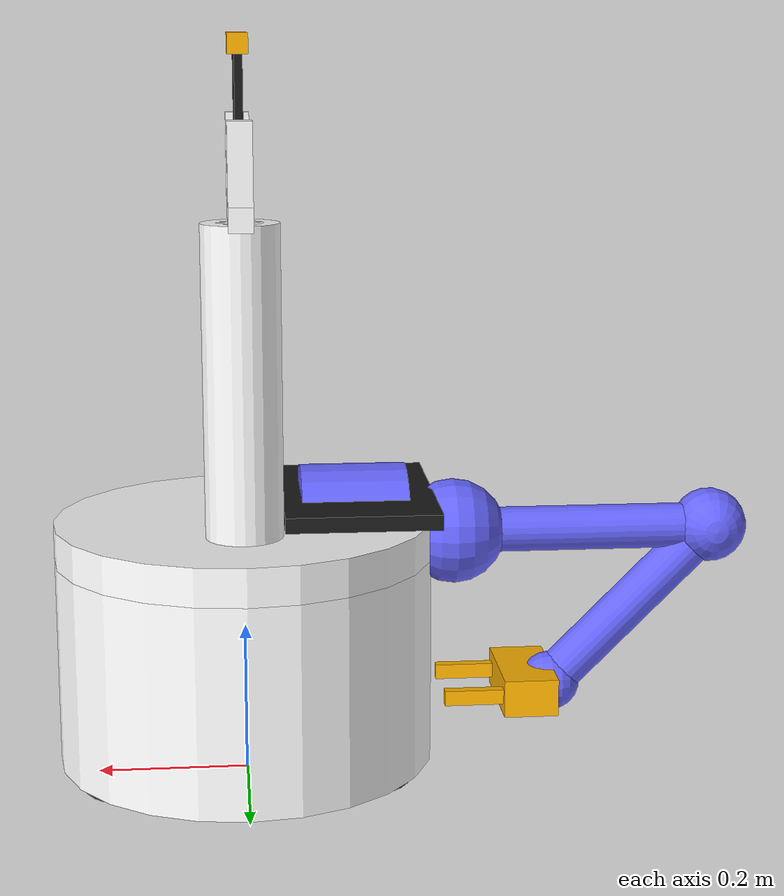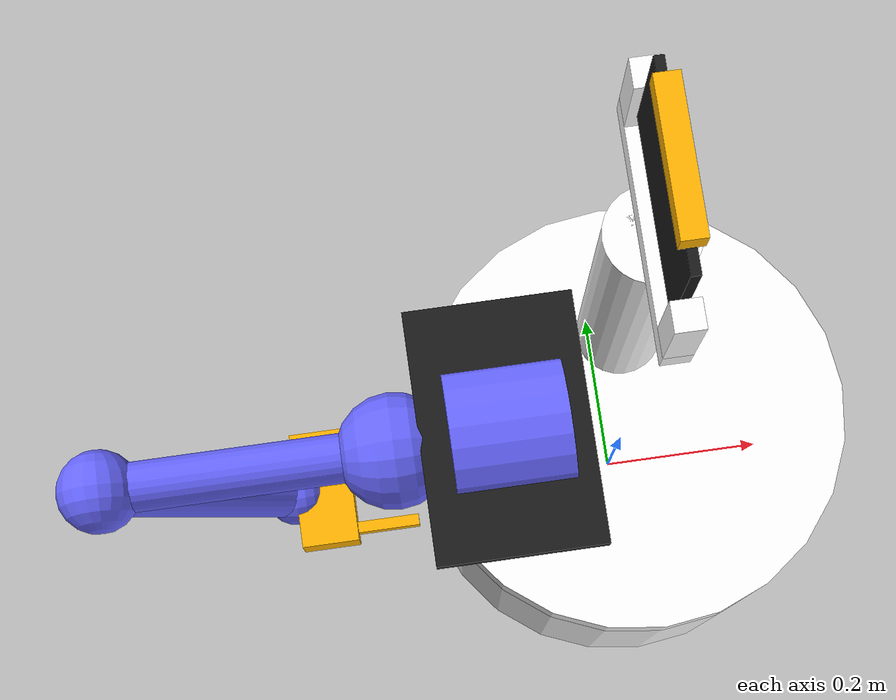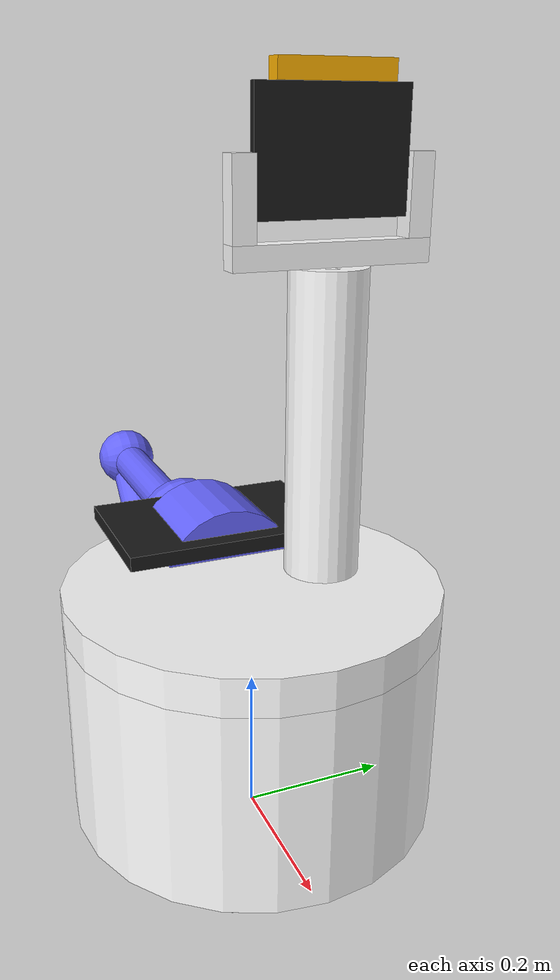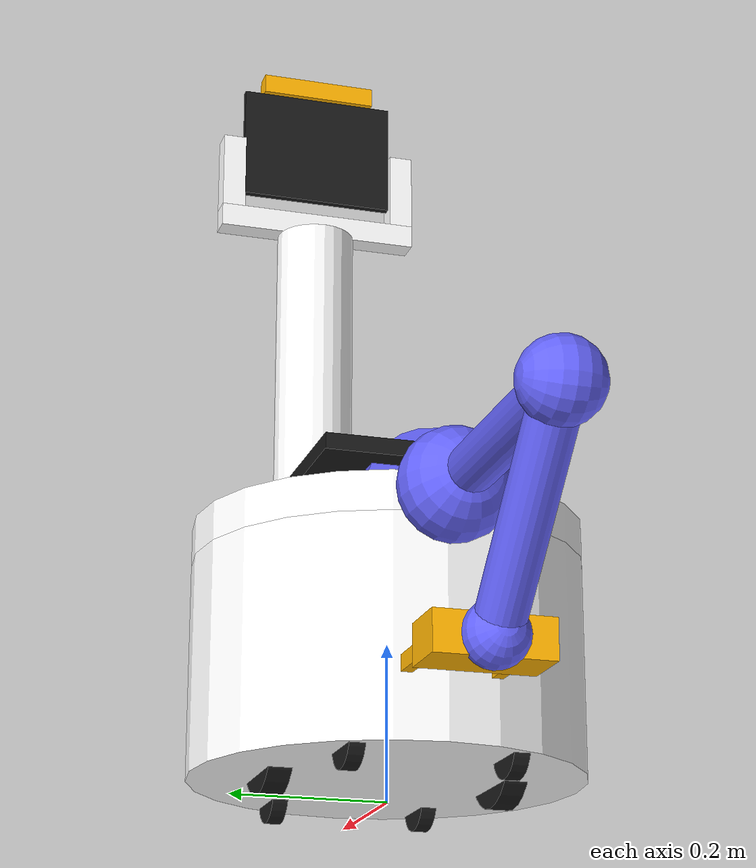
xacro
<?xml version="1.0" ?>
<robot xmlns:xacro="http://www.ros.org/wiki/xacro" name="korus">
  <include filename="$(find korus_meta)/resources/urdf/korus_robosem_base_front_mount.xacro"/>
  <include filename="$(find korus_meta)/resources/urdf/schunk_pwa_arm.xacro"/>

  <!-- ************************ Robot model ************************* -->
  <xacro:korus_robosem_base_front_mount>
  </xacro:korus_robosem_base_front_mount>

  <!-- ************************ Arm model ************************* -->
	<xacro:schunk_pwa_arm parent="body_link">
	</xacro:schunk_pwa_arm>
</robot>

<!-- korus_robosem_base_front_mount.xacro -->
<robot xmlns:xacro="http://www.ros.org/wiki/xacro">

	  <!-- ************************ Properties ************************** -->
	  <xacro:property name="pi" value="3.1415926535897931" />
	  <xacro:property name="material_white">
	    <material name="white">
	      <color rgba="1 1 1 1"/>
	    </material>
	  </xacro:property>
	  <xacro:property name="material_orange">
	    <material name="orange">
	      <color rgba="1.0 0.7 0.0 1"/>
	    </material>
	  </xacro:property>
	  <xacro:property name="material_red">
	    <material name="red">
	      <color rgba="1.0 0.0 0.0 1"/>
	    </material>
	  </xacro:property>
	  <xacro:property name="material_grey_blue">
	    <material name="grey_blue">
	      <color rgba="0.4 0.4 1.0 1"/>
	    </material>
	  </xacro:property>
	  <xacro:property name="material_blue">
	    <material name="blue">
	      <color rgba="0.0 0.0 1.0 1"/>
	    </material>
	  </xacro:property>
	  <xacro:property name="material_green">
	    <material name="green">
	      <color rgba="0 .8 0 1"/>
	    </material>
	  </xacro:property>
	  <xacro:property name="material_grey">
	    <material name="grey">
	      <color rgba="0.7 0.7 0.7 1.0"/>
	    </material>
	  </xacro:property>
	  <xacro:property name="material_black">
	    <material name="black">
	      <color rgba="0.1 0.1 0.1 1"/>
	    </material>
	  </xacro:property>
    <xacro:property name="wheel_bias" value="0.3" />
    <xacro:property name="wheel_radius" value="0.075" />
    <xacro:property name="caster_wheel_bias" value="0.2" />
    <xacro:property name="caster_wheel_radius" value="0.040" />

    <!-- ************************** Wheel macro ************************** -->
	  <xacro:macro name="wheel" params="name length radius off_x off_y off_z type">
	    <link name="${name}">
	      <visual>
	        <geometry>
	          <cylinder length="${length}" radius="${radius}"/>
	        </geometry>
	        <origin rpy="0 ${pi/2} 0" xyz="0 0 0"/>
	        <material name="black">
	          <color rgba="0.1 0.1 0.1 1"/>
	        </material>
	      </visual>
	    </link>
	    <joint name="${name}" type="${type}">
	      <parent link="base_link"/>
	      <child link="${name}"/>
	      <origin rpy="0 0 ${pi/2}" xyz="${off_x} ${off_y} ${off_z}"/>
	    </joint>
	  </xacro:macro>

    <!-- ************************** Robot macro ************************** -->
    <xacro:macro name="korus_robosem_base_front_mount">

		  <!-- ************************** Base *************************** -->
		  <link name="base_footprint"></link>
		  <joint name="base_joint" type="fixed">
		    <parent link="base_footprint"/>
		    <child link="base_link"/>
		    <origin rpy="0 0 0" xyz="0.0 0.0 0.075"/>
		  </joint>
		  <link name="base_link">
		    <visual>
		      <origin rpy="0 0 0" xyz="0.0 0 0.0875"/>
		       <geometry>
		        <cylinder length="0.275" radius="0.250"/>
		      </geometry>
		      <xacro:insert_block name="material_white" />
		    </visual>
		  </link>
		  <xacro:wheel name="wheel_left" length="0.03" radius="${wheel_radius}" off_x="0.0" off_y="${wheel_bias/2}" off_z="0.0" type="continuous"/>
		  <xacro:wheel name="wheel_right" length="0.03" radius="${wheel_radius}" off_x="0.0" off_y="-${wheel_bias/2}" off_z="0.0" type="continuous"/>
		  <xacro:wheel name="caster_front_left" length="0.02" radius="${caster_wheel_radius}" off_x="0.18" off_y="${caster_wheel_bias/2}" off_z="-0.035" type="fixed"/>
		  <xacro:wheel name="caster_front_right" length="0.02" radius="${caster_wheel_radius}" off_x="0.18" off_y="-${caster_wheel_bias/2}" off_z="-0.035" type="fixed"/>
		  <xacro:wheel name="caster_back_left" length="0.02" radius="${caster_wheel_radius}" off_x="-0.18" off_y="${caster_wheel_bias/2}" off_z="-0.035" type="fixed"/>
		  <xacro:wheel name="caster_back_right" length="0.02" radius="${caster_wheel_radius}" off_x="-0.18" off_y="-${caster_wheel_bias/2}" off_z="-0.035" type="fixed"/>

		  <!-- ************************** Body ************************** -->

		  <joint name="body" type="revolute">
		    <parent link="base_link"/>
		    <child link="body_link"/>
		    <origin rpy="0 0 0" xyz="0.0 0.0 0.250"/>
		    <axis xyz="0 0 1"/>
		    <limit effort="10" lower="-${pi}" upper="${pi}" velocity="0.013"/>
		  </joint>
		  <link name="body_link">
		    <visual>
		      <origin rpy="0 0 0" xyz="0.0 0.0 0.0"/>
		       <geometry>
		        <cylinder length="0.05" radius="0.25"/>
		      </geometry>
		      <xacro:insert_block name="material_white" />
		    </visual>
		  </link>

      <!-- ************************** Tray ************************** -->
      <joint name="tray_joint" type="fixed">
        <parent link="body_link"/>
        <child link="tray_link"/>
        <origin rpy="0 0 0" xyz="0.0 0.0 0.0"/>
      </joint>
      <link name="tray_link">
      <visual>
        <geometry>
          <box size="0.20 0.30 0.02" />
        </geometry>
        <origin rpy="0 0.0 0" xyz="-0.15 0.0 0.05"/>
        <xacro:insert_block name="material_black" />
      </visual>
      </link>

		  <!-- ************************** Torso *************************** -->
		  <joint name="torso_joint" type="fixed">
		    <parent link="body_link"/>
		    <child link="torso_link"/>
		    <origin xyz="0.0 0.10 0.025" rpy="0 0 0"/>
		  </joint>
		  <link name="torso_link">
		    <visual>
		      <geometry>
		        <cylinder length="0.40" radius="0.05"/>
		      </geometry>
		      <origin rpy="0 0 0" xyz="0 0 0.20"/>
		      <xacro:insert_block name="material_white" />
		    </visual>
		  </link>

<!-- 	  ************************** Head ************************** -->
	  <joint name="head_joint" type="prismatic">
	    <parent link="torso_link"/>
	    <child link="head_link"/>
	    <origin rpy="0 0 ${pi}" xyz="0.0 0 0.0"/>
      <axis xyz="0 0 1"/>
      <limit effort="10" lower="0.0" upper="0.4" velocity="0.013"/>
	  </joint>
	  <link name="head_link">
	    <visual>
	      <geometry>
	        <cylinder length="0.40" radius="0.03"/>
	      </geometry>
	      <origin rpy="0 0 0" xyz="0.0 0.0 0.2"/>
	      <xacro:insert_block name="material_white" />
	    </visual>
	  </link>

<!-- 	  ************************ Tablet ************************* -->
	  <joint name="tablet_pan_joint" type="revolute">
	    <parent link="head_link"/>
	    <child link="tablet_pan_link"/>
	    <origin rpy="0 0 0" xyz="0.0 0.0 0.40"/>
	    <axis xyz="0 0 1"/>
      <limit effort="10" lower="-${pi/2}" upper="${pi/2}" velocity="0.013"/>
	  </joint>
	  <link name="tablet_pan_link">
      <visual>
        <geometry>
          <box size="0.03 0.26 0.03" />
        </geometry>
        <origin rpy="0.0 0.0 0.0" xyz="0.0 0.0 0.015"/>
        <xacro:insert_block name="material_white" />
      </visual>
	  </link>

    <joint name="tablet_tilt_mount_left_joint" type="fixed">
      <parent link="tablet_pan_link"/>
      <child link="tablet_tilt_mount_left_link"/>
      <origin rpy="0 0 0" xyz="0 0.115 0"/>
    </joint>
    <link name="tablet_tilt_mount_left_link">
      <visual>
        <geometry>
          <box size="0.03 0.03 0.10" />
        </geometry>
        <origin rpy="0.0 0.0 0.0" xyz="0.0 0.0 0.08"/>
        <xacro:insert_block name="material_white" />
      </visual>
    </link>

    <joint name="tablet_tilt_mount_right_joint" type="fixed">
      <parent link="tablet_pan_link"/>
      <child link="tablet_tilt_mount_right_link"/>
      <origin rpy="0 0 0" xyz="0 -0.115 0"/>
    </joint>
    <link name="tablet_tilt_mount_right_link">
      <visual>
        <geometry>
          <box size="0.03 0.03 0.10 " />
        </geometry>
        <origin rpy="0.0 0.0 0.0" xyz="0.0 0.0 0.08"/>
        <xacro:insert_block name="material_white" />
      </visual>
    </link>

    <joint name="tablet_tilt_joint" type="revolute">
      <parent link="tablet_pan_link"/>
      <child link="tablet_tilt_link"/>
      <origin rpy="${pi/2} 0 0" xyz="0 0 0.13"/>
      <axis xyz="0 0 1"/>
      <limit effort="10" lower="-${pi/2}" upper="${pi/2}" velocity="0.013"/>
    </joint>
    <link name="tablet_tilt_link">
      <visual>
        <geometry>
          <box size="0.01 0.20 0.15" />
        </geometry>
        <origin rpy="-${pi/2} 0.0 0.0" xyz="0.0 0.0 0.0"/>
        <xacro:insert_block name="material_black" />
      </visual>
    </link>

<!--     *********************** Asus Xtion ************************ -->
    <joint name="asus_tilt_joint" type="fixed">
      <parent link="tablet_tilt_link"/>
      <child link="asus_link"/>
      <origin rpy="0 0 0" xyz="0.0 0.0875 0.0"/>
    </joint>
    <link name="asus_link">
      <visual>
        <geometry>
          <box size="0.025 0.025 0.15" />
        </geometry>
        <origin rpy="0 0 0" xyz="0.0 0.0 0.0"/>
        <xacro:insert_block name="material_orange" />
      </visual>
    </link>
  </xacro:macro>
</robot>

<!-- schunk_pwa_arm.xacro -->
<robot xmlns:xacro="http://www.ros.org/wiki/xacro">

    <!-- ************************ Properties ************************* -->
    <xacro:property name="pi" value="3.1415926535897931" />
    <xacro:property name="material_white">
      <material name="white">
        <color rgba="1 1 1 1"/>
      </material>
    </xacro:property>
    <xacro:property name="material_orange">
      <material name="orange">
        <color rgba="1.0 0.7 0.0 1"/>
      </material>
    </xacro:property>
    <xacro:property name="material_red">
      <material name="red">
        <color rgba="1.0 0.0 0.0 1"/>
      </material>
    </xacro:property>
    <xacro:property name="material_grey_blue">
      <material name="grey_blue">
        <color rgba="0.4 0.4 1.0 1"/>
      </material>
    </xacro:property>
    <xacro:property name="material_blue">
      <material name="blue">
        <color rgba="0.0 0.0 1.0 1"/>
      </material>
    </xacro:property>
    <xacro:property name="material_green">
      <material name="green">
        <color rgba="0 .8 0 1"/>
      </material>
    </xacro:property>
    <xacro:property name="material_grey">
      <material name="grey">
        <color rgba="0.7 0.7 0.7 1.0"/>
      </material>
    </xacro:property>
    <xacro:property name="material_black">
      <material name="black">
        <color rgba="0.1 0.1 0.1 1"/>
      </material>
    </xacro:property>

  <!-- ************************ Arm macro ************************* -->
  <xacro:macro name="schunk_pwa_arm" params="parent">
    <joint name="arm_base_joint" type="fixed">
      <parent link="${parent}"/>
      <child link="arm_base_link"/>
      <origin xyz="-0.075 0.0 0.0" rpy="${pi} ${pi/2} 0"/>
    </joint>
    <link name="arm_base_link">
	    <visual>
	      <geometry>
	        <cylinder length="0.140" radius="0.093"/>
	      </geometry>
	      <origin xyz="0.0 0.0 0.07" rpy="0 0 0"/>
	      <xacro:insert_block name="material_grey_blue" />
	    </visual>
    </link>

  <joint name="shoulder_roll" type="revolute">
    <parent link="arm_base_link"/>
    <child link="shoulder_roll_link"/>
    <origin xyz="0.0 0.0 0.205" rpy="0 0 0.0"/>
    <axis xyz="0 0 1"/>
    <limit effort="10" lower="-2.97" upper="2.97" velocity="0.5"/> <!-- +/- 170 deg -->
  </joint>
  <link name="shoulder_roll_link">
    <visual>
      <geometry>
        <sphere radius="0.07"/>
      </geometry>
      <origin xyz="0.0 0.0 0.0" rpy="0 0 0"/>
      <xacro:insert_block name="material_grey_blue" />
    </visual>
  </link>

  <joint name="shoulder_pitch" type="revolute">
    <parent link="shoulder_roll_link"/>
    <child link="shoulder_pitch_link"/>
    <origin xyz="0.0 0.0 0.0" rpy="-${pi/2} -${pi/2} 0.0"/>
    <axis xyz="0 0 1"/>
    <limit effort="10" lower="-2.97" upper="2.97" velocity="0.5"/> <!-- +/- 170 deg -->
  </joint>
  <link name="shoulder_pitch_link">
    <visual>
      <geometry>
        <cylinder length="0.350" radius="0.03"/>
      </geometry>
      <origin xyz="0.175 0.0 0.0" rpy="0 ${pi/2} 0"/>
      <xacro:insert_block name="material_grey_blue" />
    </visual>
  </link>

  <joint name="elbow_pitch" type="revolute">
    <parent link="shoulder_pitch_link"/>
    <child link="elbow_pitch_link"/>
    <origin xyz="0.350 0.0 0.0" rpy="${pi} 0 ${3*pi/4}"/>
    <axis xyz="0 0 1"/>
    <limit effort="10" lower="-2.71" upper="2.71" velocity="0.5"/> <!-- +/- 155 deg -->
  </joint>
  <link name="elbow_pitch_link">
    <visual>
      <geometry>
        <sphere radius="0.05"/>
      </geometry>
      <origin xyz="0.0 0.0 0.0" rpy="0 0 0"/>
      <xacro:insert_block name="material_grey_blue" />
    </visual>
  </link>

  <joint name="elbow_roll_joint" type="revolute">
    <parent link="elbow_pitch_link"/>
    <child link="elbow_roll_link"/>
    <origin xyz="0.0 0.0 0.0" rpy="0 ${pi/2} 0"/>
    <axis xyz="0 0 1"/>
    <limit effort="10" lower="-2.97" upper="2.97" velocity="0.5"/> <!-- +/- 170 deg -->
  </joint>
  <link name="elbow_roll_link">
    <visual>
      <geometry>
        <cylinder length="0.305" radius="0.03"/>
      </geometry>
      <origin xyz="0.0 0.0 0.1525" rpy="0 0 0"/>
      <xacro:insert_block name="material_grey_blue" />
    </visual>
  </link>

  <joint name="wrist_pitch_joint" type="revolute">
    <parent link="elbow_roll_link"/>
    <child link="wrist_pitch_link"/>
    <origin xyz="0.0 0.0 0.305" rpy="${pi/4} 0 0"/>
    <axis xyz="1 0 0"/>
    <limit effort="10" lower="-2.44" upper="2.44" velocity="0.5"/> <!-- +/- 140 deg -->
  </joint>
  <link name="wrist_pitch_link">
    <visual>
      <geometry>
        <sphere radius="0.04"/>
      </geometry>
      <origin xyz="0.0 0.0 0.0" rpy="0 0 0"/>
      <xacro:insert_block name="material_grey_blue" />
    </visual>
  </link>

  <joint name="wrist_roll_joint" type="revolute">
    <parent link="wrist_pitch_link"/>
    <child link="wrist_roll_link"/>
    <origin xyz="0.0 0.0 0.0" rpy="0.0 0.0 0.0"/>
    <axis xyz="0 0 1"/>
    <limit effort="10" lower="-2.97" upper="2.97" velocity="0.5"/> <!-- +/- 170 deg -->
  </joint>
  <link name="wrist_roll_link">
    <visual>
      <geometry>
        <box size="0.1460 0.050 0.0725"/>
      </geometry>
      <origin xyz="0.0 0.0 0.03625" rpy="0 0 0"/>
      <xacro:insert_block name="material_orange" />
    </visual>
  </link>

  <!-- Endeffector (gripper) -->
  <joint name="gripper_palm_joint" type="fixed">
    <parent link="wrist_roll_link"/>
    <child link="gripper_palm_link"/>
    <origin xyz="0.0 0.0 0.0703" rpy="0.0 -${pi/2} 0.0"/>
  </joint>
  <link name="gripper_palm_link">
  </link>

  <!-- center of the volume covered by the fingers -->

  <joint name="gripper_left_finger_joint" type="prismatic">
    <parent link="gripper_palm_link"/>
    <child link="gripper_left_finger_tip_link"/>
    <origin xyz="0.0 0.0 0.055 " rpy="${pi} 0.0 0.0"/>
    <axis xyz="0 0 1"/>
    <limit effort="10" lower="0.0" upper="0.04" velocity="0.5"/>
  </joint>
  <link name="gripper_left_finger_tip_link">
      <visual>
      <geometry>
        <box size="0.081 0.02 0.014"/>
      </geometry>
      <origin xyz="0.0405 0.0 0.0" rpy="0 0 0"/>
      <xacro:insert_block name="material_orange" />
    </visual>
  </link>

  <joint name="gripper_right_finger_joint" type="prismatic">
    <parent link="gripper_palm_link"/>
    <child link="gripper_right_finger_tip_link"/>
    <origin xyz="0.0 0.0 -0.055" rpy="0.0 0.0 0.0"/>
    <axis xyz="0 0 1"/>
    <limit effort="10" lower="0.0" upper="0.04" velocity="0.5"/>
  </joint>
  <link name="gripper_right_finger_tip_link">
      <visual>
      <geometry>
        <box size="0.081 0.02 0.014"/>
      </geometry>
      <origin xyz="0.0405 0.0 0.0" rpy="0 0 0"/>
      <xacro:insert_block name="material_orange" />
    </visual>
  </link>

  </xacro:macro>
</robot>
